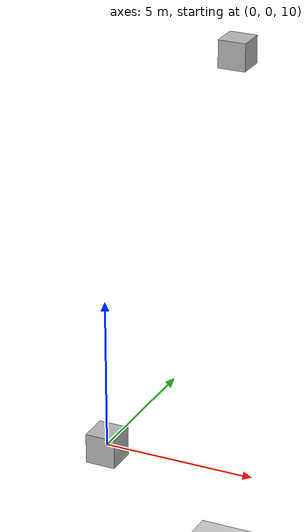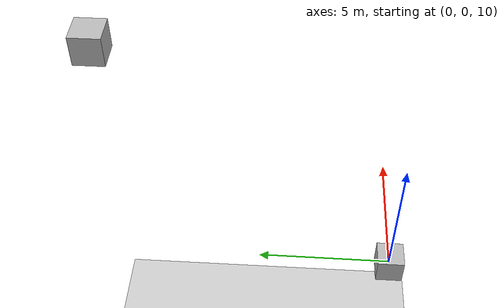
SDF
<?xml version="1.0"?>
<sdf version="1.6">
  <world name="default">
    <model name="Mine">
      <pose>0 0 10 0 0 0</pose>
      <link name="link">
        <visual name="visual">
          <geometry>
            <box>
              <size>1.0 1.0 1.0</size>
            </box>
          </geometry>
        </visual>
        <collision name="collision">
          <geometry>
            <box>
              <size>1.0 1.0 1.0</size>
            </box>
          </geometry>
        </collision>
        <sensor name='sensor_contact' type='contact'>
          <contact>
            <collision>collision</collision>
          </contact>
        </sensor>
      </link>
      <plugin filename="gz-sim-contact-system" name="gz::sim::systems::Contact"></plugin>
      <plugin filename="ExplosiveMine" name="mine::ExplosiveMine">
        <targets>
          <item>ground_plane</item>
        </targets>
        <namespace>mine</namespace>
        <time>0.001</time>
        <enabled>true</enabled>
      </plugin>
    </model>
    <model name="Mine2">
      <pose>0 10 20 0 0 0</pose>
      <link name="link">
        <visual name="visual">
          <geometry>
            <box>
              <size>1.0 1.0 1.0</size>
            </box>
          </geometry>
        </visual>
        <collision name="collision">
          <geometry>
            <box>
              <size>1.0 1.0 1.0</size>
            </box>
          </geometry>
        </collision>
        <sensor name='sensor_contact' type='contact'>
          <contact>
            <collision>collision</collision>
          </contact>
        </sensor>
      </link>
      <plugin filename="gz-sim-contact-system" name="gz::sim::systems::Contact"></plugin>
      <plugin filename="ExplosiveMine" name="mine::ExplosiveMine">
        <targets>
          <item>ground_plane</item>
        </targets>
        <colors>
            <r>0.0</r>
            <g>0.0</g>
            <b>1.0</b>
            <a>1.0</a>
        </colors>
        <namespace>mine</namespace>
        <time>0.001</time>
        <enabled>true</enabled>
      </plugin>
    </model>
    <model name="ground_plane">
      <static>true</static>
      <link name="link">
        <collision name="collision">
          <geometry>
            <plane>
              <normal>0 0 1</normal>
            </plane>
          </geometry>
        </collision>
        <visual name="visual">
          <geometry>
            <plane>
              <normal>0 0 1</normal>
              <size>100 100</size>
            </plane>
          </geometry>
          <material>
            <ambient>0.8 0.8 0.8 1</ambient>
            <diffuse>0.8 0.8 0.8 1</diffuse>
            <specular>0.8 0.8 0.8 1</specular>
          </material>
        </visual>
      </link>
    </model>
  </world>
</sdf>
